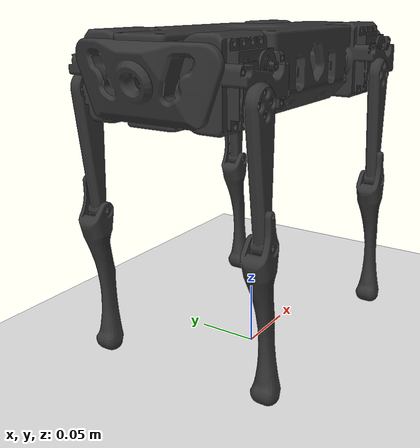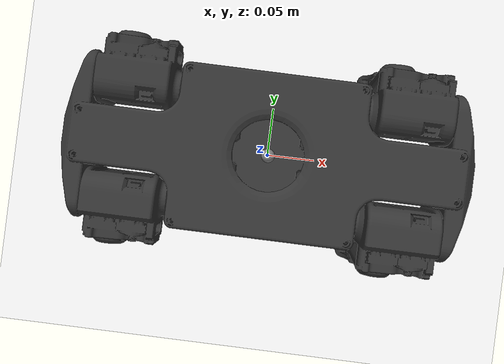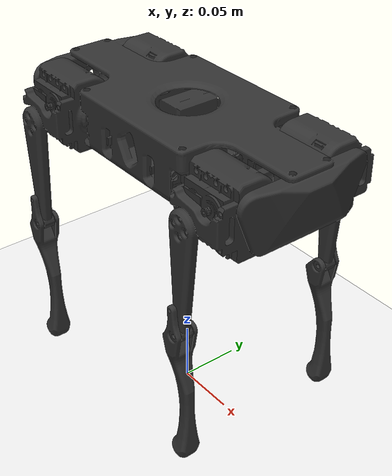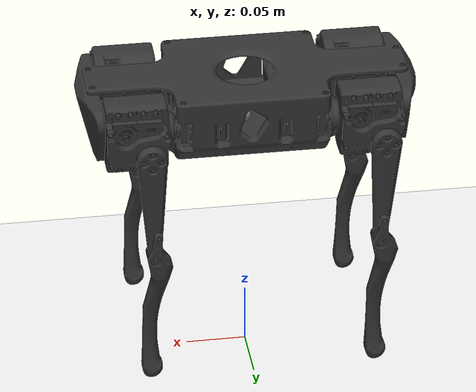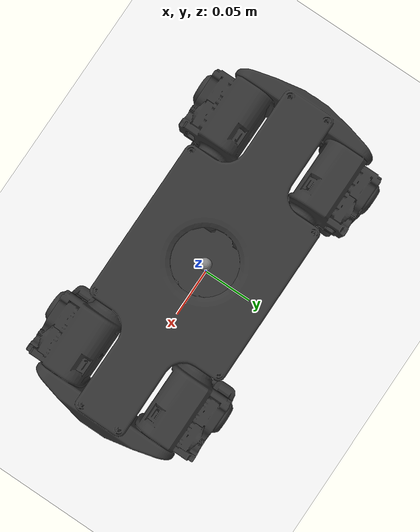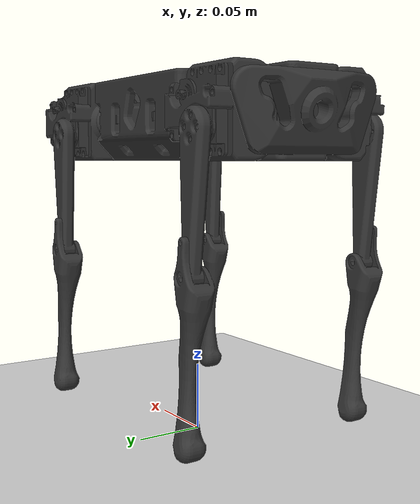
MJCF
<mujoco model="JQG12 scene">
  <option timestep="0.001" integrator="implicitfast" cone="elliptic" impratio="100"/>

  <include file="JQG12_straight.xml"/>

  <statistic center="0 0 1" extent="1.8"/>

  <visual>
    <headlight diffuse="0.6 0.6 0.6" ambient="0.3 0.3 0.3" specular="0 0 0"/>
    <rgba haze="0.15 0.25 0.35 1"/>
    <global azimuth="160" elevation="-20"/>
  </visual>

  <asset>
    <texture type="skybox" builtin="gradient" rgb1="0.3 0.5 0.7" rgb2="0 0 0" width="512" height="3072"/>
    <texture type="2d" name="groundplane" builtin="checker" mark="edge" rgb1="0.2 0.3 0.4" rgb2="0.1 0.2 0.3"
      markrgb="0.8 0.8 0.8" width="300" height="300"/>
    <material name="groundplane" texture="groundplane" texuniform="true" texrepeat="5 5" reflectance="0.2"/>
  </asset>

  <worldbody>
    <light pos="0 0 3.5" dir="0 0 -1" directional="true"/>
    <geom name="floor" size="0 0 0.05" type="plane" material="groundplane"/>
  </worldbody>

</mujoco>

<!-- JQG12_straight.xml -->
<mujoco model="JQG12">

  <default>
    <joint damping="0.8" armature="0.01" />
  </default>

  <compiler angle="radian" />

  <asset>
    <material name="body_material" rgba="0.2 0.2 0.2 1" specular="0" shininess="0" reflectance="0" emission="0" />
    <mesh name="base_link.STL" file="../meshes/base_link.STL" />
    <mesh name="l_f_link.STL" file="../meshes/l_f_link.STL" />
    <mesh name="l_f_1link.STL" file="../meshes/l_f_1link.STL" />
    <mesh name="l_f_2link.STL" file="../meshes/l_f_2link.STL" />
    <mesh name="l_b_link.STL" file="../meshes/l_b_link.STL" />
    <mesh name="l_b_1link.STL" file="../meshes/l_b_1link.STL" />
    <mesh name="l_b_2link.STL" file="../meshes/l_b_2link.STL" />
    <mesh name="r_f_link.STL" file="../meshes/r_f_link.STL" />
    <mesh name="r_f_1link.STL" file="../meshes/r_f_1link.STL" />
    <mesh name="r_f_2link.STL" file="../meshes/r_f_2link.STL" />
    <mesh name="r_b_link.STL" file="../meshes/r_b_link.STL" />
    <mesh name="r_b_1link.STL" file="../meshes/r_b_1link.STL" />
    <mesh name="r_b_2link.STL" file="../meshes/r_b_2link.STL" />
  </asset>

  <worldbody>
    <geom name="floor" type="plane" size="10 10 0.1" rgba="0.95 0.95 0.95 1"/>

    <body name="base_link" pos="0.0 0.0 0.22" quat="1 0 0 0">
      <freejoint name="floating_base" />
      <geom type="mesh" mesh="base_link.STL" material="body_material" />

      <!-- 左前腿 -->
      <body name="l_f_link" pos="0.0643 0.0375 0.01495" quat="1.0 0.0 0.0 0.0">
        <joint name="l_f_joint" type="hinge" ref="0.0" range="-1.57 1.57" axis="1 0 0" />
        <inertial pos="0.029689 0.0062796 6.3546E-05" quat="1.0 0.0 0.0 0.0" mass="0.09703" diaginertia="3.0876e-05 3.4106e-05 2.3976e-05" />
        <geom type="mesh" mesh="l_f_link.STL" material="body_material" />

        <body name="l_f_1link" pos="0.02055 0.0323 -0.01" quat="0.8138784566625339 0.0 -0.5810351605373051 0.0">
          <joint name="l_f_1link" type="hinge" ref="0.0" range="-1.57 1.57" axis="0 1 0" />
          <inertial pos="-0.037087 6.5093E-06 -0.012413" quat="1.0 0.0 0.0 0.0" mass="0.018878" diaginertia="1.6778e-06 1.1567e-05 1.0117e-05" />
          <geom type="mesh" mesh="l_f_1link.STL" material="body_material" />

          <body name="l_f_2link" pos="-0.085347 0 -0.028565" quat="0.6448265472400012 0.0 0.7643289370255051 0.0">
            <joint name="l_f_2link" type="hinge" ref="0.0" range="-3.14 0" axis="0 1 0" />
            <inertial pos="0.025876 0.00021878 -0.045422" quat="1.0 0.0 0.0 0.0" mass="0.019798" diaginertia="2.1203e-05 3.0541e-05 1.0141e-05" />
            <geom type="mesh" mesh="l_f_2link.STL" material="body_material" />
          </body>
        </body>
      </body>

      <!-- 左后腿 -->
      <body name="l_b_link" pos="-0.0643 0.0375 0.01495" quat="1.0 0.0 0.0 0.0">
        <joint name="l_b_joint" type="hinge" ref="0.0" range="-1.57 1.57" axis="1 0 0" />
        <inertial pos="-0.029142 0.0062906 6.3684E-05" quat="1.0 0.0 0.0 0.0" mass="0.096818" diaginertia="3.0834e-05 3.3971e-05 2.3844e-05" />
        <geom type="mesh" mesh="l_b_link.STL" material="body_material" />

        <body name="l_b_1link" pos="-0.04045 0.0323 -0.01" quat="0.9210609940028851 0.0 -0.3894183423086505 0.0">
          <joint name="l_b_1link" type="hinge" ref="0.0" range="-1.57 1.57" axis="0 1 0" />
          <inertial pos="-0.026879 6.5079E-06 -0.028408" quat="1.0 0.0 0.0 0.0" mass="0.018878" diaginertia="6.1897e-06 1.1567e-05 5.6053e-06" />
          <geom type="mesh" mesh="l_b_1link.STL" material="body_material" />

          <body name="l_b_2link" pos="-0.061855 0 -0.065375" quat="0.7002847660410397 0.0 0.7138636049350369 0.0">
            <joint name="l_b_2link" type="hinge" ref="0.0" range="-3.14 0" axis="0 1 0" />
            <inertial pos="0.037301 0.00021879 -0.036625" quat="1.0 0.0 0.0 0.0" mass="0.019798" diaginertia="1.312e-05 3.0541e-05 1.8224e-05" />
            <geom type="mesh" mesh="l_b_2link.STL" material="body_material" />
          </body>
        </body>
      </body>

      <!-- 右前腿 -->
      <body name="r_f_link" pos="0.0643 -0.0375 0.01495" quat="1.0 0.0 0.0 0.0">
        <joint name="r_f_joint" type="hinge" ref="0.0" range="-1.57 1.57" axis="1 0 0" />
        <inertial pos="0.029689 -0.0062796 6.3542E-05" quat="1.0 0.0 0.0 0.0" mass="0.09703" diaginertia="3.0876e-05 3.4106e-05 2.3976e-05" />
        <geom type="mesh" mesh="r_f_link.STL" material="body_material" />

        <body name="r_f_1link" pos="0.02055 -0.0323 -0.01" quat="0.9872272833756269 0.0 -0.15931820661424598 0.0">
          <joint name="r_f_1link" type="hinge" ref="0.0" range="-1.57 1.57" axis="0 1 0" />
          <inertial pos="-0.013037 -9.6442E-06 -0.036954" quat="1.0 0.0 0.0 0.0" mass="0.018883" diaginertia="1.0042e-05 1.1601e-05 1.7862e-06" />
          <geom type="mesh" mesh="r_f_1link.STL" material="body_material" />

          <body name="r_f_2link" pos="-0.029943 0 -0.084873" quat="0.8846749491085283 0.0 0.4662083594486727 0.0">
            <joint name="r_f_2link" type="hinge" ref="0.0" range="-3.14 0" axis="0 1 0" />
            <inertial pos="0.032289 -0.00021871 -0.041112" quat="1.0 0.0 0.0 0.0" mass="0.019798" diaginertia="1.6937e-05 3.0541e-05 1.4407e-05" />
            <geom type="mesh" mesh="r_f_2link.STL" material="body_material" />
          </body>
        </body>
      </body>

      <!-- 右后腿 -->
      <body name="r_b_link" pos="-0.0643 -0.0375 0.01495" quat="1.0 0.0 0.0 0.0">
        <joint name="r_b_joint" type="hinge" ref="0.0" range="-1.57 1.57" axis="1 0 0" />
        <inertial pos="-0.029142 -0.0062906 6.3681E-05" quat="1.0 0.0 0.0 0.0" mass="0.096818" diaginertia="3.0834e-05 3.3971e-05 2.3844e-05" />
        <geom type="mesh" mesh="r_b_link.STL" material="body_material" />

        <body name="r_b_1link" pos="-0.04045 -0.0323 -0.01" quat="0.8551272907805307 0.0 -0.518418090504517 0.0">
          <joint name="r_b_1link" type="hinge" ref="0.0" range="-1.57 1.57" axis="0 1 0" />
          <inertial pos="-0.034071 -9.6422E-06 -0.019359" quat="1.0 0.0 0.0 0.0" mass="0.018883" diaginertia="3.2003e-06 1.1601e-05 8.6279e-06" />
          <geom type="mesh" mesh="r_b_1link.STL" material="body_material" />

          <body name="r_b_2link" pos="-0.078251 0 -0.044462" quat="0.5318607213743555 0.0 0.8468318446180152 0.0">
            <joint name="r_b_2link" type="hinge" ref="0.0" range="-3.14 0" axis="0 1 0" />
            <inertial pos="0.042882 -0.00021873 -0.029898" quat="1.0 0.0 0.0 0.0" mass="0.019798" diaginertia="8.4467e-06 3.0541e-05 2.2897e-05" />
            <geom type="mesh" mesh="r_b_2link.STL" material="body_material" />
          </body>
        </body>
      </body>

      <site name="base_link_site" pos="0 0 0" quat="1 0 0 0" />
    </body>
  </worldbody>

  <actuator>
    <position name="l_f_joint_ctrl" joint="l_f_joint" kp="30" forcerange="-18 18"/>
    <position name="l_f_1link_ctrl" joint="l_f_1link" kp="30" forcerange="-18 18"/>
    <position name="l_f_2link_ctrl" joint="l_f_2link" kp="30" forcerange="-18 18"/>
    <position name="l_b_joint_ctrl" joint="l_b_joint" kp="30" forcerange="-18 18"/>
    <position name="l_b_1link_ctrl" joint="l_b_1link" kp="30" forcerange="-18 18"/>
    <position name="l_b_2link_ctrl" joint="l_b_2link" kp="30" forcerange="-18 18"/>
    <position name="r_f_joint_ctrl" joint="r_f_joint" kp="30" forcerange="-18 18"/>
    <position name="r_f_1link_ctrl" joint="r_f_1link" kp="30" forcerange="-18 18"/>
    <position name="r_f_2link_ctrl" joint="r_f_2link" kp="30" forcerange="-18 18"/>
    <position name="r_b_joint_ctrl" joint="r_b_joint" kp="30" forcerange="-18 18"/>
    <position name="r_b_1link_ctrl" joint="r_b_1link" kp="30" forcerange="-18 18"/>
    <position name="r_b_2link_ctrl" joint="r_b_2link" kp="30" forcerange="-18 18"/>
  </actuator>

  <contact>
    <exclude body1="base_link" body2="l_f_link" />
    <exclude body1="l_f_link" body2="l_f_1link" />
    <exclude body1="l_f_1link" body2="l_f_2link" />
    <exclude body1="base_link" body2="l_b_link" />
    <exclude body1="l_b_link" body2="l_b_1link" />
    <exclude body1="l_b_1link" body2="l_b_2link" />
    <exclude body1="base_link" body2="r_f_link" />
    <exclude body1="r_f_link" body2="r_f_1link" />
    <exclude body1="r_f_1link" body2="r_f_2link" />
    <exclude body1="base_link" body2="r_b_link" />
    <exclude body1="r_b_link" body2="r_b_1link" />
    <exclude body1="r_b_1link" body2="r_b_2link" />
  </contact>

</mujoco>
